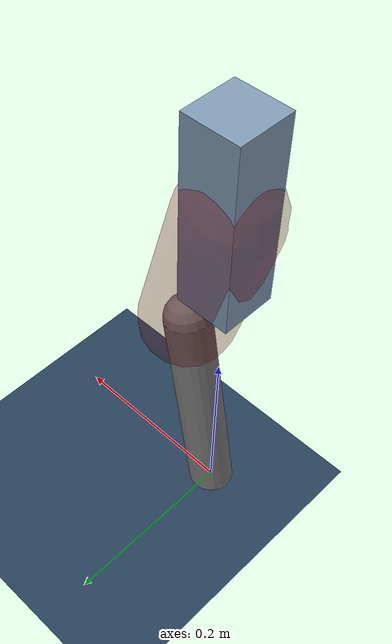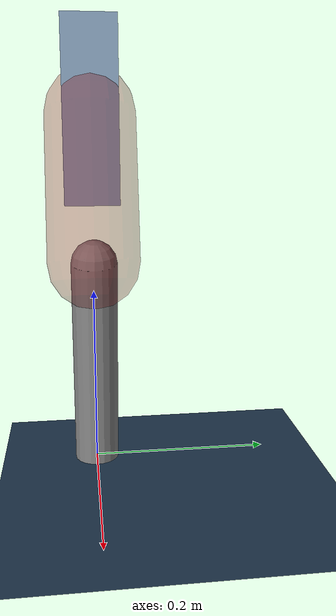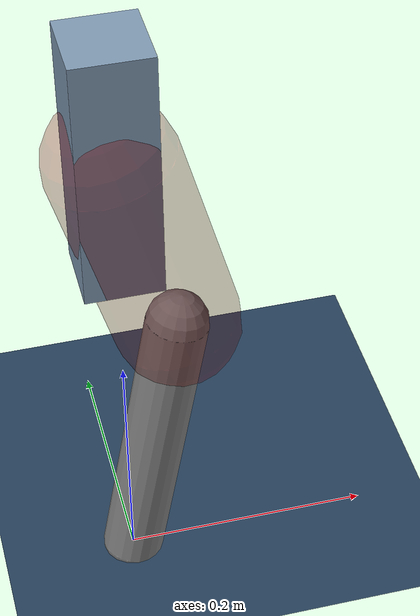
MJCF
<mujoco model="Hopper2D">
	<compiler inertiafromgeom="true" angle="radian" />
	<option timestep="0.001" integrator="implicit" cone="elliptic" solver="Newton" tolerance="1e-10" />

	<default>
		<geom contype="1" conaffinity="1" condim="3" friction="2 0.005 0.0001" solref="0.005 1" />
		<joint limited="true" damping="0.1" />
	</default>

	<asset>
		<texture name="skybox" type="skybox" builtin="gradient" rgb1=".4 .6 .8" rgb2="0 0 0" width="800" height="800" />
		<texture name="grid" type="2d" builtin="checker" rgb1=".1 .2 .3" rgb2=".2 .3 .4" width="300" height="300" mark="edge" markrgb=".2 .3 .4" />
		<material name="ground" texture="grid" texrepeat="1 1" texuniform="true" reflectance="0.1" />
		<material name="leg" rgba="0.5 0.6 0.7 1" />
	</asset>

	<worldbody>

		<geom name="floor" type="plane" size="5 5 0.25" material="ground" />

		<light directional="false" diffuse="0.8 0.8 0.8" specular="0.3 0.3 0.3" pos="0 0 2" dir="0 0 -1" />
		<light mode="targetbodycom" target="base" directional="false" diffuse="0.8 0.8 0.8" specular="0.3 0.3 0.3" pos="0 0 2" dir="0 0 -1" />

		<camera name="fixed" pos="0 -2 1" xyaxes="1 0 0 0 0 1" />
		<camera name="tracking" mode="trackcom" pos="0 -3 1" />

		<body name="root" pos="0 0 0.4013157897508891">
			<joint name="slide_x" type="slide" axis="1 0 0" range="-100 100" />
			<joint name="slide_z" type="slide" axis="0 0 1" range="0 10" />

			<body name="base" pos="0 0 0">
				<geom name="torso" type="box" size="0.03 0.03 0.1" mass="1.9809999999999999" material="leg" />

				<body name="link1" pos="0 0 0" euler="0 1.301179659865404 0">
					<joint type="hinge" axis="0 -1 0" pos="0 0 0" name="hinge1" limited="true" range="-3.14 3.14" stiffness="0" damping="0.1" />
					<geom name="thigh" type="capsule" fromto="0 0 0 0.16585464426079835 0 0" size="0.05" rgba="0.5 0 0 0.3" mass="0.646351146225916" />

					<body name="link2" pos="0.16585464426079835 0 0" euler="0 0.4505797756772287 0">
						<joint type="hinge" axis="0 -1 0" pos="0 0 0" name="hinge2" limited="true" range="-3.14 3.14" stiffness="0" damping="0.1" />
						<geom name="shank" type="capsule" fromto="0 0 0 0.24546114549009074 0 0" size="0.025" mass="0.4387689163920726" />

					</body>
				</body>
			</body>
		</body>
	</worldbody>

	<actuator>
		<motor name="torque1" joint="hinge1" ctrlrange="-72.9185850003345 72.9185850003345" ctrllimited="true" gear="1" />
		<motor name="torque2" joint="hinge2" ctrlrange="-12.395379906611021 12.395379906611021" ctrllimited="true" gear="1" />
	</actuator>
</mujoco>
